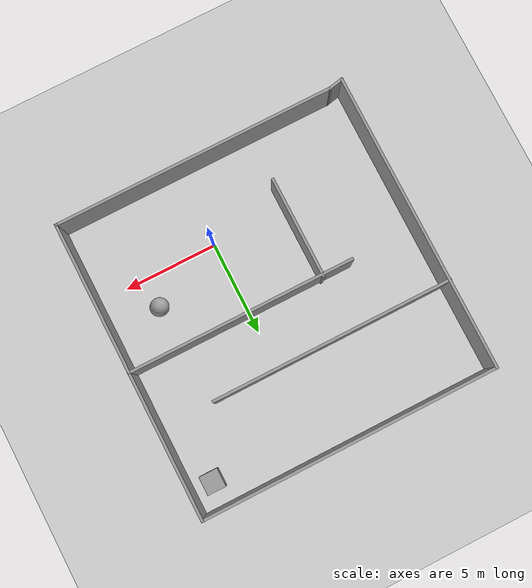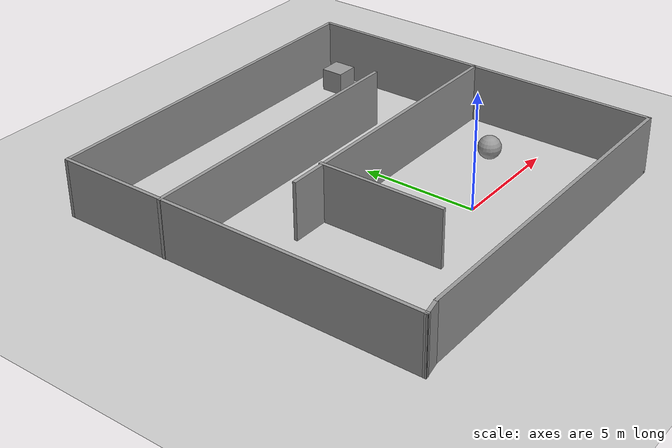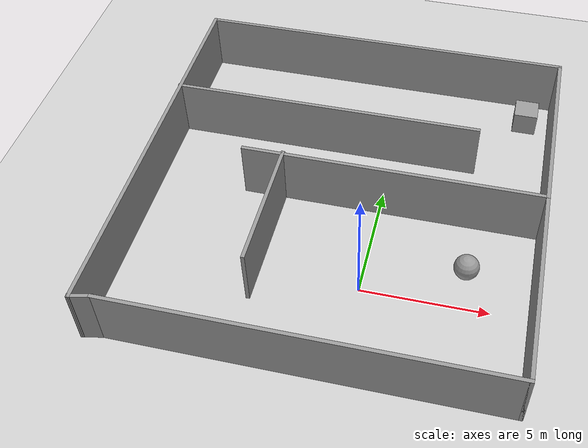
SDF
<sdf version="1.7">
 <world name="default">
  <light name="sun" type="directional">
   <pose>0 0 10 0 -0 0</pose>
   <diffuse>0.8 0.8 0.8 1</diffuse>
   <specular>0.2 0.2 0.2 1</specular>
   <attenuation>
    <range>1000</range>
    <constant>0.9</constant>
    <linear>0.01</linear>
    <quadratic>0.001</quadratic>
   </attenuation>
   <direction>-0.5 0.1 -0.9</direction>
   <spot><inner_angle>0</inner_angle><outer_angle>0</outer_angle><falloff>0</falloff></spot>
  </light>
  <model name="ground_plane">
   <static>1</static>
   <link name="link">
    <collision name="collision">
     <geometry><plane><normal>0 0 1</normal><size>100 100</size></plane></geometry>
     <surface><friction><ode><mu>100</mu><mu2>50</mu2></ode></friction></surface>
    </collision>
    <visual name="visual">
     <cast_shadows>0</cast_shadows>
     <geometry><plane><normal>0 0 1</normal><size>100 100</size></plane></geometry>
     <material>
      <script><uri>file://media/materials/scripts/gazebo.material</uri><name>Gazebo/Grey</name></script>
     </material>
    </visual>
   </link>
  </model>
  <gravity>0 0 -9.8</gravity>
  <magnetic_field>6e-06 2.3e-05 -4.2e-05</magnetic_field>
  <atmosphere type="adiabatic"/>
  <physics type="ode">
   <max_step_size>0.001</max_step_size>
   <real_time_factor>1</real_time_factor>
   <real_time_update_rate>1000</real_time_update_rate>
  </physics>
  <scene><ambient>0.4 0.4 0.4 1</ambient><background>0.7 0.7 0.7 1</background><shadows>1</shadows></scene>
  <spherical_coordinates>
   <surface_model>EARTH_WGS84</surface_model>
   <latitude_deg>0</latitude_deg>
   <longitude_deg>0</longitude_deg>
   <elevation>0</elevation>
   <heading_deg>0</heading_deg>
  </spherical_coordinates>
  <model name="ststic_maze">
   <pose>-1.4573 3.881 0 0 -0 0</pose>
   <link name="Wall_11">
    <collision name="Wall_11_Collision">
     <geometry><box><size>13 0.15 2.5</size></box></geometry>
     <pose>0 0 1.25 0 -0 0</pose>
    </collision>
    <visual name="Wall_11_Visual">
     <pose>0 0 1.25 0 -0 0</pose>
     <geometry><box><size>13 0.15 2.5</size></box></geometry>
     <material>
      <script><uri>file://media/materials/scripts/gazebo.material</uri><name>Gazebo/Grey</name></script>
      <ambient>1 1 1 1</ambient>
     </material>
     <meta><layer>0</layer></meta>
    </visual>
    <pose>-1.50972 3.27833 0 0 -0 0</pose>
   </link>
   <link name="Wall_13">
    <collision name="Wall_13_Collision">
     <geometry><box><size>5.5 0.15 2.5</size></box></geometry>
     <pose>0 0 1.25 0 -0 0</pose>
    </collision>
    <visual name="Wall_13_Visual">
     <pose>0 0 1.25 0 -0 0</pose>
     <geometry><box><size>5.5 0.15 2.5</size></box></geometry>
     <material>
      <script><uri>file://media/materials/scripts/gazebo.material</uri><name>Gazebo/Grey</name></script>
      <ambient>1 1 1 1</ambient>
     </material>
     <meta><layer>0</layer></meta>
    </visual>
    <pose>-2.55084 -2.39451 0 0 -0 -1.5708</pose>
   </link>
   <link name="Wall_2">
    <collision name="Wall_2_Collision">
     <geometry><box><size>15.25 0.15 2.5</size></box></geometry>
     <pose>0 0 1.25 0 -0 0</pose>
    </collision>
    <visual name="Wall_2_Visual">
     <pose>0 0 1.25 0 -0 0</pose>
     <geometry><box><size>15.25 0.15 2.5</size></box></geometry>
     <material>
      <script><uri>file://media/materials/scripts/gazebo.material</uri><name>Gazebo/Grey</name></script>
      <ambient>1 1 1 1</ambient>
     </material>
     <meta><layer>0</layer></meta>
    </visual>
    <pose>0.384719 -7.89337 0 0 -0 0</pose>
   </link>
   <link name="Wall_3">
    <collision name="Wall_3_Collision">
     <geometry><box><size>8.25 0.15 2.5</size></box></geometry>
     <pose>0 0 1.25 0 -0 0</pose>
    </collision>
    <visual name="Wall_3_Visual">
     <pose>0 0 1.25 0 -0 0</pose>
     <geometry><box><size>8.25 0.15 2.5</size></box></geometry>
     <material>
      <script><uri>file://media/materials/scripts/gazebo.material</uri><name>Gazebo/Grey</name></script>
      <ambient>1 1 1 1</ambient>
     </material>
     <meta><layer>0</layer></meta>
    </visual>
    <pose>7.93472 -3.84337 0 0 -0 1.5708</pose>
   </link>
   <link name="Wall_4">
    <collision name="Wall_4_Collision">
     <geometry><box><size>12.25 0.15 2.5</size></box></geometry>
     <pose>0 0 1.25 0 -0 0</pose>
    </collision>
    <visual name="Wall_4_Visual">
     <pose>0 0 1.25 0 -0 0</pose>
     <geometry><box><size>12.25 0.15 2.5</size></box></geometry>
     <material>
      <script><uri>file://media/materials/scripts/gazebo.material</uri><name>Gazebo/Grey</name></script>
      <ambient>1 1 1 1</ambient>
     </material>
     <meta><layer>0</layer></meta>
    </visual>
    <pose>1.88472 0.206626 0 0 -0 3.14159</pose>
   </link>
   <link name="Wall_6">
    <collision name="Wall_6_Collision">
     <geometry><box><size>8 0.15 2.5</size></box></geometry>
     <pose>0 0 1.25 0 -0 0</pose>
    </collision>
    <visual name="Wall_6_Visual">
     <pose>0 0 1.25 0 -0 0</pose>
     <geometry><box><size>8 0.15 2.5</size></box></geometry>
     <material>
      <script><uri>file://media/materials/scripts/gazebo.material</uri><name>Gazebo/Grey</name></script>
      <ambient>1 1 1 1</ambient>
     </material>
     <meta><layer>0</layer></meta>
    </visual>
    <pose>7.93472 4.13163 0 0 -0 1.5708</pose>
   </link>
   <link name="Wall_7">
    <collision name="Wall_7_Collision">
     <geometry><box><size>16 0.15 2.5</size></box></geometry>
     <pose>0 0 1.25 0 -0 0</pose>
    </collision>
    <visual name="Wall_7_Visual">
     <pose>0 0 1.25 0 -0 0</pose>
     <geometry><box><size>16 0.15 2.5</size></box></geometry>
     <material>
      <script><uri>file://media/materials/scripts/gazebo.material</uri><name>Gazebo/Grey</name></script>
      <ambient>1 1 1 1</ambient>
     </material>
     <meta><layer>0</layer></meta>
    </visual>
    <pose>0.009719 8.05663 0 0 -0 3.14159</pose>
   </link>
   <link name="Wall_8">
    <collision name="Wall_8_Collision">
     <geometry><box><size>16.25 0.15 2.5</size></box></geometry>
     <pose>0 0 1.25 0 -0 0</pose>
    </collision>
    <visual name="Wall_8_Visual">
     <pose>0 0 1.25 0 -0 0</pose>
     <geometry><box><size>16.25 0.15 2.5</size></box></geometry>
     <material>
      <script><uri>file://media/materials/scripts/gazebo.material</uri><name>Gazebo/Grey</name></script>
      <ambient>1 1 1 1</ambient>
     </material>
     <meta><layer>0</layer></meta>
    </visual>
    <pose>-7.91528 0.006626 0 0 -0 -1.5708</pose>
   </link>
   <link name="Wall_9">
    <collision name="Wall_9_Collision">
     <geometry><box><size>0.914853 0.15 2.5</size></box></geometry>
     <pose>0 0 1.25 0 -0 0</pose>
    </collision>
    <visual name="Wall_9_Visual">
     <pose>0 0 1.25 0 -0 0</pose>
     <geometry><box><size>0.914853 0.15 2.5</size></box></geometry>
     <material>
      <script><uri>file://media/materials/scripts/gazebo.material</uri><name>Gazebo/Grey</name></script>
      <ambient>1 1 1 1</ambient>
     </material>
     <meta><layer>0</layer></meta>
    </visual>
    <pose>-7.54028 -7.96837 0 0 -0 0.197396</pose>
   </link>
   <static>1</static>
  </model>
  <model name="unit_box">
   <pose>5.36724 10.5841 0.499995 -1e-05 -0 0</pose>
   <link name="link">
    <inertial>
     <mass>1</mass>
     <inertia>
      <ixx>0.166667</ixx>
      <ixy>0</ixy>
      <ixz>0</ixz>
      <iyy>0.166667</iyy>
      <iyz>0</iyz>
      <izz>0.166667</izz>
     </inertia>
    </inertial>
    <collision name="collision"><geometry><box><size>1 1 1</size></box></geometry></collision>
    <visual name="visual">
     <geometry><box><size>1 1 1</size></box></geometry>
     <material>
      <script><name>Gazebo/Grey</name><uri>file://media/materials/scripts/gazebo.material</uri></script>
     </material>
    </visual>
   </link>
  </model>
  <model name="unit_sphere">
   <pose>3.8723 1.6228 0.5 0 -0 0</pose>
   <link name="link">
    <inertial>
     <mass>1</mass>
     <inertia><ixx>0.1</ixx><ixy>0</ixy><ixz>0</ixz><iyy>0.1</iyy><iyz>0</iyz><izz>0.1</izz></inertia>
    </inertial>
    <collision name="collision"><geometry><sphere><radius>0.5</radius></sphere></geometry></collision>
    <visual name="visual">
     <geometry><sphere><radius>0.5</radius></sphere></geometry>
     <material>
      <script><name>Gazebo/Grey</name><uri>file://media/materials/scripts/gazebo.material</uri></script>
     </material>
    </visual>
   </link>
  </model>
 </world>
</sdf>
